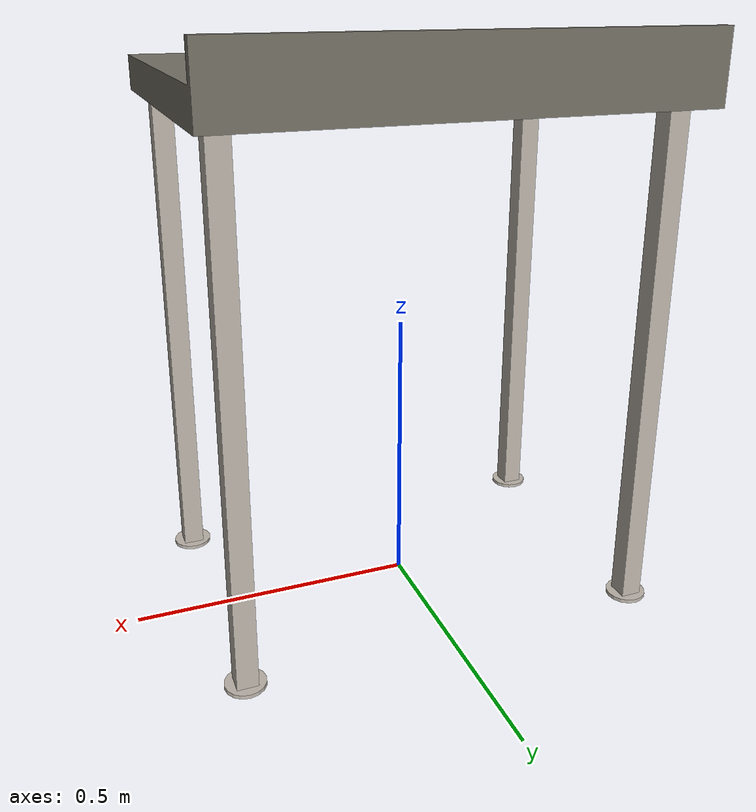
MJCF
<?xml version="1.0" encoding="utf-8"?>
<mujoco model="table_dishwasher">
  <compiler angle="radian" meshdir="assets" texturedir="assets" autolimits="true"/>
  <asset>
    <texture type="2d" name="table" file="table.png"/>
    <material name="table_dishwasher" specular="0.3" shininess="0.5" rgba="0.62 0.62 0.6 1" texture="table"/>
    <material name="table_dishwasher_legs" specular="0.3" shininess="0.5" rgba="1 1 1 1" texture="table"/>
    <mesh file="table_dishwasher.obj"/>
    <mesh file="table_dishwasher_legs.obj"/>
    <mesh file="table_dishwasher_collision_001.obj"/>
    <mesh file="table_dishwasher_collision_002.obj"/>
    <mesh file="table_dishwasher_collision_003.obj"/>
    <mesh file="table_dishwasher_collision_004.obj"/>
    <mesh file="table_dishwasher_collision_005.obj"/>
    <mesh file="table_dishwasher_collision_006.obj"/>
  </asset>
  <default>
    <default class="table_dishwasher">
      <default class="visual">
        <geom type="mesh" contype="0" conaffinity="0" group="2" euler="1.5708 0 0" material="table_dishwasher"/>
      </default>
      <default class="collision">
        <geom type="mesh" group="3" euler="1.5708 0 0"/>
      </default>
    </default>
  </default>
  <worldbody>
    <body name="table_dishwasher" childclass="table_dishwasher">
      <geom name="mesh" mesh="table_dishwasher" class="visual" material="table_dishwasher"/>
      <geom name="mesh_legs" mesh="table_dishwasher_legs" class="visual" material="table_dishwasher_legs"/>
      <geom name="collider_001" mesh="table_dishwasher_collision_001" class="collision"/>
      <geom name="collider_002" mesh="table_dishwasher_collision_002" class="collision"/>
      <geom name="collider_003" mesh="table_dishwasher_collision_003" class="collision"/>
      <geom name="collider_004" mesh="table_dishwasher_collision_004" class="collision"/>
      <geom name="collider_005" mesh="table_dishwasher_collision_005" class="collision"/>
      <geom name="collider_006" mesh="table_dishwasher_collision_006" class="collision"/>
    </body>
  </worldbody>
</mujoco>
